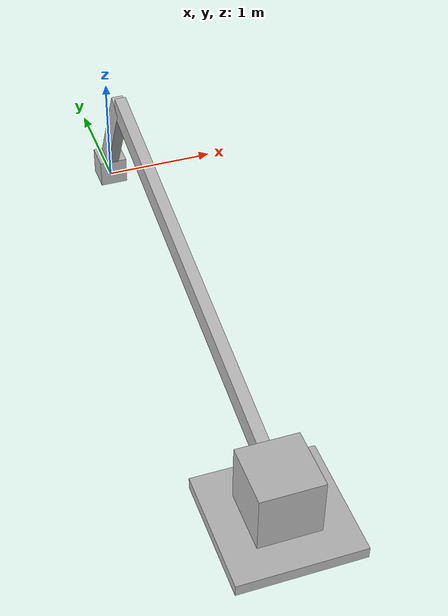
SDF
<sdf version='1.7'>
  <model name='crankrobot'>
    <joint name='world2base' type='fixed'>
      <pose relative_to='__model__'>0 0 0.1 0 -0 0</pose>
      <parent>world</parent>
      <child>base</child>
    </joint>
    <link name='base'>
      <pose relative_to='world2base'>0 0 0 0 -0 0</pose>
      <inertial>
        <pose>0 0 0.05 0 -0 0</pose>
        <mass>5</mass>
        <inertia>
          <ixx>1</ixx>
          <ixy>0</ixy>
          <ixz>0</ixz>
          <iyy>1</iyy>
          <iyz>0</iyz>
          <izz>1</izz>
        </inertia>
      </inertial>
      <collision name='base_collision'>
        <pose>0 0 0.05 0 -0 0</pose>
        <geometry>
          <box>
            <size>0.25 0.25 0.25</size>
          </box>
        </geometry>
      </collision>
      <visual name='base_visual'>
        <pose>0 0 0 0 -0 0</pose>
        <geometry>
          <box>
            <size>0.25 0.25 0.25</size>
          </box>
        </geometry>
      </visual>
    </link>

    <joint name='joint1' type='revolute'>
      <pose relative_to='base'>0 0 0.1 0.5 -0 0</pose>
      <parent>base</parent>
      <child>link_1</child>
      <axis>
        <xyz>1 0 0</xyz>
      </axis>
    </joint>
    <link name='link_1'>
      <pose relative_to='joint1'>0 0 0 0 -0 0</pose>
      <inertial>
        <pose>0 0 0.5 0 -0 0</pose>
        <mass>1</mass>
        <inertia>
          <ixx>1</ixx>
          <ixy>0</ixy>
          <ixz>0</ixz>
          <iyy>1</iyy>
          <iyz>0</iyz>
          <izz>1</izz>
        </inertia>
      </inertial>
      <visual name='link_1'>
        <pose>0 0 0.5 0 -0 0</pose>
        <geometry>
          <box>
            <size>0.1 0.2 1</size>
          </box>
        </geometry>
      </visual>
    </link>

    <joint name='joint2' type='revolute'>
      <pose relative_to='link_1'>0 0 1 1.25 -0 0</pose>
      <parent>link_1</parent>
      <child>link_2</child>
      <axis>
        <xyz>1 0 0</xyz>
      </axis>
    </joint>
    <link name='link_2'>
      <pose relative_to='joint2'>0 0 0 0 -0 0</pose>
      <inertial>
        <pose>0 0 1 0 -0 0</pose>
        <mass>1</mass>
        <inertia>
          <ixx>1</ixx>
          <ixy>0</ixy>
          <ixz>0</ixz>
          <iyy>1</iyy>
          <iyz>0</iyz>
          <izz>1</izz>
        </inertia>
      </inertial>

      <visual name='link_2_visual'>
        <pose>0 0 2 0 -0 0</pose>
        <geometry>
          <box>
            <size>0.1 0.2 4</size>
          </box>
        </geometry>
      </visual>
    </link>

    <joint name='joint3' type='revolute'>
      <pose relative_to='link_2'>0 0 4 1.38 0 0</pose>
      <parent>link_2</parent>
      <child>link_box</child>
      <axis>
        <xyz>1 0 0</xyz>
      </axis>
    </joint>
    <link name='link_box'>
      <pose relative_to='joint3'>0 0 0 0 -0 0</pose>
      <inertial>
        <pose>0 0 0 0 -0 0</pose>
        <mass>1</mass>
        <inertia>
          <ixx>0.270</ixx>
          <ixy>0</ixy>
          <ixz>0</ixz>
          <iyy>0.270</iyy>
          <iyz>0</iyz>
          <izz>0.270</izz>
        </inertia>
      </inertial>
      <visual name='link_box_visual'>
        <pose>0 0 0 0 -0 0</pose>
        <geometry>
          <box>
            <size>0.5 0.5 0.5</size>
          </box>
        </geometry>
      </visual>
    </link>

    <joint name='linkboxfixed' type='fixed'>
      <pose relative_to='link_box'>0 0 0.25 0 -0 0</pose>
      <parent>link_box</parent>
      <child>ground</child>
    </joint>

    <link name='ground'>
      <pose relative_to='linkboxfixed'>0 0 0 0 -0 0</pose>
      <inertial>
        <pose>0 0 0 0 -0 0</pose>
        <mass>1</mass>
        <inertia>
          <ixx>1</ixx>
          <ixy>0</ixy>
          <ixz>0</ixz>
          <iyy>1</iyy>
          <iyz>0</iyz>
          <izz>1</izz>
        </inertia>
      </inertial>
      <visual name='ground_visual'>
        <pose>0 0 0.05 0 0 0</pose>
        <geometry>
          <box>
            <size>1 1 0.1</size>
          </box>
        </geometry>
      </visual>
    </link>

    <joint name='prismatic_joint' type='prismatic'>
      <pose relative_to='world'>0 0 0 0 0 0</pose>
      <axis>
        <xyz>0 1 0</xyz>
      </axis>
      <parent>ground</parent>
      <child>world</child>
    </joint>

  </model>
</sdf>
